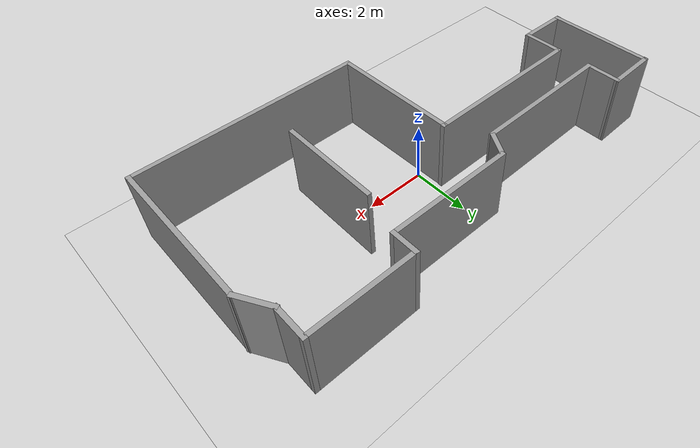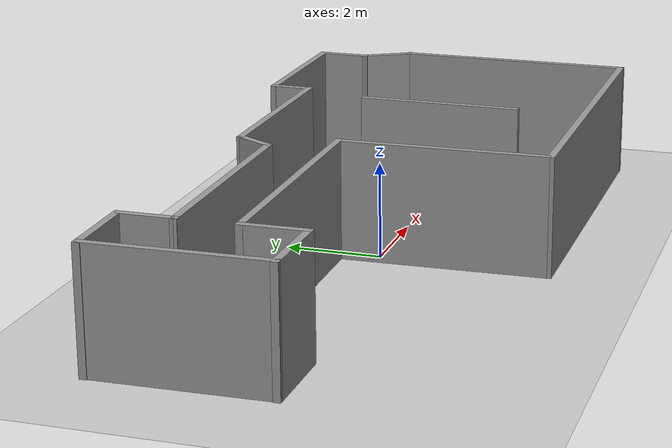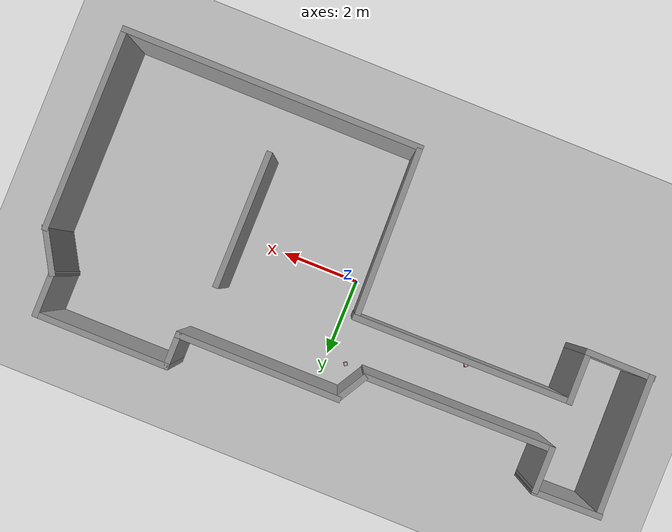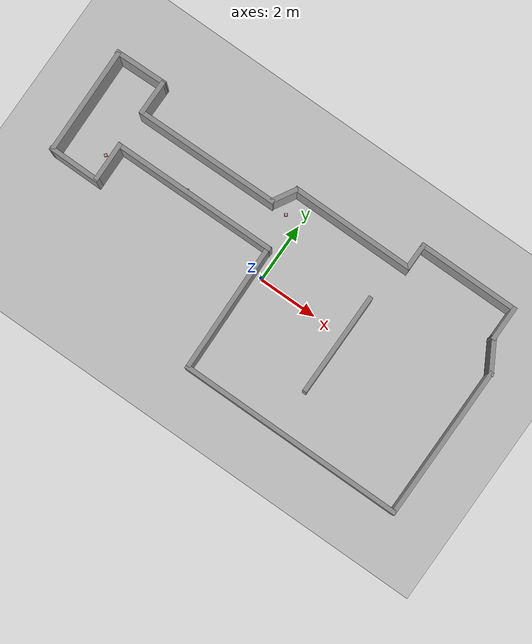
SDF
<sdf version="1.7">
 <world name="default">
  <model name="ground_plane">
   <static>1</static>
   <link name="link">
    <collision name="collision">
     <geometry><plane><normal>0 0 1</normal><size>100 100</size></plane></geometry>
     <surface><friction><ode><mu>100</mu><mu2>50</mu2></ode></friction></surface>
    </collision>
    <visual name="visual">
     <cast_shadows>0</cast_shadows>
     <geometry><plane><normal>0 0 1</normal><size>100 100</size></plane></geometry>
     <material>
      <script><uri>file://media/materials/scripts/gazebo.material</uri><name>Gazebo/Grey</name></script>
     </material>
    </visual>
   </link>
  </model>
  <model name="room_walls">
   <link name="Wall_1">
    <collision name="Wall_1_Collision">
     <geometry><box><size>1.2 0.15 2.5</size></box></geometry>
     <pose>0 0 1.25 0 -0 0</pose>
    </collision>
    <visual name="Wall_1_Visual">
     <pose>0 0 1.25 0 -0 0</pose>
     <geometry><box><size>1.2 0.15 2.5</size></box></geometry>
     <material>
      <script><uri>file://media/materials/scripts/gazebo.material</uri><name>Gazebo/Grey</name></script>
      <ambient>1 1 1 1</ambient>
     </material>
     <meta><layer>0</layer></meta>
    </visual>
    <pose>-5.79107 2.49368 0 0 -0 1.5708</pose>
   </link>
   <link name="Wall_2">
    <collision name="Wall_2_Collision">
     <geometry><box><size>1.79256 0.15 2.5</size></box></geometry>
     <pose>0 0 1.25 0 -0 0</pose>
    </collision>
    <visual name="Wall_2_Visual">
     <pose>0 0 1.25 0 -0 0</pose>
     <geometry><box><size>1.79256 0.15 2.5</size></box></geometry>
     <material>
      <script><uri>file://media/materials/scripts/gazebo.material</uri><name>Gazebo/Grey</name></script>
      <ambient>1 1 1 1</ambient>
     </material>
     <meta><layer>0</layer></meta>
    </visual>
    <pose>-6.61216 3.04631 0 0 -0 -3.1203</pose>
   </link>
   <link name="Wall_3">
    <collision name="Wall_3_Collision">
     <geometry><box><size>3.68565 0.15 2.5</size></box></geometry>
     <pose>0 0 1.25 0 -0 0</pose>
    </collision>
    <visual name="Wall_3_Visual">
     <pose>0 0 1.25 0 -0 0</pose>
     <geometry><box><size>3.68565 0.15 2.5</size></box></geometry>
     <material>
      <script><uri>file://media/materials/scripts/gazebo.material</uri><name>Gazebo/Grey</name></script>
      <ambient>1 1 1 1</ambient>
     </material>
     <meta><layer>0</layer></meta>
    </visual>
    <pose>-7.38434 1.26123 0 0 -0 -1.5545</pose>
   </link>
   <link name="Wall_4">
    <collision name="Wall_4_Collision">
     <geometry><box><size>1.77744 0.15 2.5</size></box></geometry>
     <pose>0 0 1.25 0 -0 0</pose>
    </collision>
    <visual name="Wall_4_Visual">
     <pose>0 0 1.25 0 -0 0</pose>
     <geometry><box><size>1.77744 0.15 2.5</size></box></geometry>
     <material>
      <script><uri>file://media/materials/scripts/gazebo.material</uri><name>Gazebo/Grey</name></script>
      <ambient>1 1 1 1</ambient>
     </material>
     <meta><layer>0</layer></meta>
    </visual>
    <pose>-6.56193 -0.508986 0 0 -0 -0.003224</pose>
   </link>
   <link name="Wall_5">
    <collision name="Wall_5_Collision">
     <geometry><box><size>1.35672 0.15 2.5</size></box></geometry>
     <pose>0 0 1.25 0 -0 0</pose>
    </collision>
    <visual name="Wall_5_Visual">
     <pose>0 0 1.25 0 -0 0</pose>
     <geometry><box><size>1.35672 0.15 2.5</size></box></geometry>
     <material>
      <script><uri>file://media/materials/scripts/gazebo.material</uri><name>Gazebo/Grey</name></script>
      <ambient>1 1 1 1</ambient>
     </material>
     <meta><layer>0</layer></meta>
    </visual>
    <pose>-5.75827 0.136795 0 0 -0 1.5846</pose>
   </link>
   <link name="Wall_6">
    <collision name="Wall_6_Collision">
     <geometry><box><size>5.64664 0.15 2.5</size></box></geometry>
     <pose>0 0 1.25 0 -0 0</pose>
    </collision>
    <visual name="Wall_6_Visual">
     <pose>0 0 1.25 0 -0 0</pose>
     <geometry><box><size>5.64664 0.15 2.5</size></box></geometry>
     <material>
      <script><uri>file://media/materials/scripts/gazebo.material</uri><name>Gazebo/Grey</name></script>
      <ambient>1 1 1 1</ambient>
     </material>
     <meta><layer>0</layer></meta>
    </visual>
    <pose>-3.02009 0.766397 0 0 -0 0.007796</pose>
   </link>
   <link name="Wall_7">
    <collision name="Wall_7_Collision">
     <geometry><box><size>4.38998 0.15 2.5</size></box></geometry>
     <pose>0 0 1.25 0 -0 0</pose>
    </collision>
    <visual name="Wall_7_Visual">
     <pose>0 0 1.25 0 -0 0</pose>
     <geometry><box><size>4.38998 0.15 2.5</size></box></geometry>
     <material>
      <script><uri>file://media/materials/scripts/gazebo.material</uri><name>Gazebo/Grey</name></script>
      <ambient>1 1 1 1</ambient>
     </material>
     <meta><layer>0</layer></meta>
    </visual>
    <pose>-0.242291 -1.34162 0 0 -0 -1.54891</pose>
   </link>
   <link name="Wall_8">
    <collision name="Wall_8_Collision">
     <geometry><box><size>7.75 0.15 2.5</size></box></geometry>
     <pose>0 0 1.25 0 -0 0</pose>
    </collision>
    <visual name="Wall_8_Visual">
     <pose>0 0 1.25 0 -0 0</pose>
     <geometry><box><size>7.75 0.15 2.5</size></box></geometry>
     <material>
      <script><uri>file://media/materials/scripts/gazebo.material</uri><name>Gazebo/Grey</name></script>
      <ambient>1 1 1 1</ambient>
     </material>
     <meta><layer>0</layer></meta>
    </visual>
    <pose>3.60739 -3.55107 0 0 -0 0</pose>
   </link>
   <link name="Wall_9">
    <collision name="Wall_9_Collision">
     <geometry><box><size>5.25 0.15 2.5</size></box></geometry>
     <pose>0 0 1.25 0 -0 0</pose>
    </collision>
    <visual name="Wall_9_Visual">
     <pose>0 0 1.25 0 -0 0</pose>
     <geometry><box><size>5.25 0.15 2.5</size></box></geometry>
     <material>
      <script><uri>file://media/materials/scripts/gazebo.material</uri><name>Gazebo/Grey</name></script>
      <ambient>1 1 1 1</ambient>
     </material>
     <meta><layer>0</layer></meta>
    </visual>
    <pose>7.40739 -1.00107 0 0 -0 1.5708</pose>
   </link>
   <link name="Wall_10">
    <collision name="Wall_10_Collision">
     <geometry><box><size>1.25 0.15 2.5</size></box></geometry>
     <pose>0 0 1.25 0 -0 0</pose>
    </collision>
    <visual name="Wall_10_Visual">
     <pose>0 0 1.25 0 -0 0</pose>
     <geometry><box><size>1.25 0.15 2.5</size></box></geometry>
     <material>
      <script><uri>file://media/materials/scripts/gazebo.material</uri><name>Gazebo/Grey</name></script>
      <ambient>1 1 1 1</ambient>
     </material>
     <meta><layer>0</layer></meta>
    </visual>
    <pose>7.13239 2.02524 0 0 -0 2.0944</pose>
   </link>
   <link name="Wall_11">
    <collision name="Wall_11_Collision">
     <geometry><box><size>1.20114 0.15 2.5</size></box></geometry>
     <pose>0 0 1.25 0 -0 0</pose>
    </collision>
    <visual name="Wall_11_Visual">
     <pose>0 0 1.25 0 -0 0</pose>
     <geometry><box><size>1.20114 0.15 2.5</size></box></geometry>
     <material>
      <script><uri>file://media/materials/scripts/gazebo.material</uri><name>Gazebo/Grey</name></script>
      <ambient>1 1 1 1</ambient>
     </material>
     <meta><layer>0</layer></meta>
    </visual>
    <pose>6.85739 3.02713 0 0 -0 1.5708</pose>
   </link>
   <link name="Wall_12">
    <collision name="Wall_12_Collision">
     <geometry><box><size>3.5 0.15 2.5</size></box></geometry>
     <pose>0 0 1.25 0 -0 0</pose>
    </collision>
    <visual name="Wall_12_Visual">
     <pose>0 0 1.25 0 -0 0</pose>
     <geometry><box><size>3.5 0.15 2.5</size></box></geometry>
     <material>
      <script><uri>file://media/materials/scripts/gazebo.material</uri><name>Gazebo/Grey</name></script>
      <ambient>1 1 1 1</ambient>
     </material>
     <meta><layer>0</layer></meta>
    </visual>
    <pose>5.18239 3.55269 0 0 -0 3.14159</pose>
   </link>
   <link name="Wall_13">
    <collision name="Wall_13_Collision">
     <geometry><box><size>0.951136 0.15 2.5</size></box></geometry>
     <pose>0 0 1.25 0 -0 0</pose>
    </collision>
    <visual name="Wall_13_Visual">
     <pose>0 0 1.25 0 -0 0</pose>
     <geometry><box><size>0.951136 0.15 2.5</size></box></geometry>
     <material>
      <script><uri>file://media/materials/scripts/gazebo.material</uri><name>Gazebo/Grey</name></script>
      <ambient>1 1 1 1</ambient>
     </material>
     <meta><layer>0</layer></meta>
    </visual>
    <pose>3.50739 3.15213 0 0 -0 -1.5708</pose>
   </link>
   <link name="Wall_14">
    <collision name="Wall_14_Collision">
     <geometry><box><size>4.25 0.15 2.5</size></box></geometry>
     <pose>0 0 1.25 0 -0 0</pose>
    </collision>
    <visual name="Wall_14_Visual">
     <pose>0 0 1.25 0 -0 0</pose>
     <geometry><box><size>4.25 0.15 2.5</size></box></geometry>
     <material>
      <script><uri>file://media/materials/scripts/gazebo.material</uri><name>Gazebo/Grey</name></script>
      <ambient>1 1 1 1</ambient>
     </material>
     <meta><layer>0</layer></meta>
    </visual>
    <pose>1.45739 2.75156 0 0 -0 3.14159</pose>
   </link>
   <link name="Wall_15">
    <collision name="Wall_15_Collision">
     <geometry><box><size>0.9 0.15 2.5</size></box></geometry>
     <pose>0 0 1.25 0 -0 0</pose>
    </collision>
    <visual name="Wall_15_Visual">
     <pose>0 0 1.25 0 -0 0</pose>
     <geometry><box><size>0.9 0.15 2.5</size></box></geometry>
     <material>
      <script><uri>file://media/materials/scripts/gazebo.material</uri><name>Gazebo/Grey</name></script>
      <ambient>1 1 1 1</ambient>
     </material>
     <meta><layer>0</layer></meta>
    </visual>
    <pose>-0.805112 2.3835 0 0 -0 -2.0944</pose>
   </link>
   <link name="Wall_16">
    <collision name="Wall_16_Collision">
     <geometry><box><size>4.92373 0.15 2.5</size></box></geometry>
     <pose>0 0 1.25 0 -0 0</pose>
    </collision>
    <visual name="Wall_16_Visual">
     <pose>0 0 1.25 0 -0 0</pose>
     <geometry><box><size>4.92373 0.15 2.5</size></box></geometry>
     <material>
      <script><uri>file://media/materials/scripts/gazebo.material</uri><name>Gazebo/Grey</name></script>
      <ambient>1 1 1 1</ambient>
     </material>
     <meta><layer>0</layer></meta>
    </visual>
    <pose>-3.40434 1.98962 0 0 -0 -3.13077</pose>
   </link>
   <link name="Wall_17">
    <collision name="Wall_17_Collision">
     <geometry><box><size>3.5 0.15 2.5</size></box></geometry>
     <pose>0 0 1.25 0 -0 0</pose>
    </collision>
    <visual name="Wall_17_Visual">
     <pose>0 0 1.25 0 -0 0</pose>
     <geometry><box><size>3.5 0.15 2.5</size></box></geometry>
     <material>
      <script><uri>file://media/materials/scripts/gazebo.material</uri><name>Gazebo/Grey</name></script>
      <ambient>1 1 1 1</ambient>
     </material>
     <meta><layer>0</layer></meta>
    </visual>
    <pose>3.10875 -0.378342 0 0 -0 -1.5708</pose>
   </link>
   <static>1</static>
  </model>
  <model name="poly_10">
   <pose>-0.540636 2.08424 0.024997 4e-06 0.000102 2.17764</pose>
   <link name="poly_10_link">
    <inertial>
     <mass>0.7</mass>
     <inertia>
      <ixx>0.00016667</ixx>
      <ixy>0</ixy>
      <ixz>0</ixz>
      <iyy>0.00016667</iyy>
      <iyz>0</iyz>
      <izz>0.00016667</izz>
     </inertia>
    </inertial>
    <collision name="collision"><geometry><box><size>0.1 0.1 0.1</size></box></geometry></collision>
    <visual name="visual">
     <geometry><box><size>0.1 0.1 0.1</size></box></geometry>
     <material>
      <script><name>Gazebo/Red</name><uri>file://media/materials/scripts/gazebo.material</uri></script>
     </material>
    </visual>
   </link>
   <link name="tag10">
    <pose>0 0 0.051 0 -0 0</pose>
    <collision name="collision"><geometry><box><size>0.0825 0.0825 0.0001</size></box></geometry></collision>
    <visual name="visual">
     <cast_shadows>0</cast_shadows>
     <geometry><box><size>0.0825 0.0825 0.0001</size></box></geometry>
     <material>
      <script>
       <uri>model://artag/materials/scripts</uri>
       <uri>model://artag/materials/textures</uri>
       <name>material/artag10</name>
      </script>
     </material>
    </visual>
    <inertial>
     <inertia><ixx>0.0001</ixx><ixy>0</ixy><ixz>0</ixz><iyy>0.0001</iyy><iyz>0</iyz><izz>0.0001</izz></inertia>
     <mass>0.1</mass>
    </inertial>
   </link>
   <joint name="poly_10_tag10" type="fixed"><parent>poly_10_link</parent><child>tag10</child></joint>
  </model>
  <model name="poly_11">
   <pose>-3.46381 0.942433 0.025 0 -0 0.525908</pose>
   <link name="poly_11_link">
    <inertial>
     <mass>0.7</mass>
     <inertia>
      <ixx>0.00016667</ixx>
      <ixy>0</ixy>
      <ixz>0</ixz>
      <iyy>0.00016667</iyy>
      <iyz>0</iyz>
      <izz>0.00016667</izz>
     </inertia>
    </inertial>
    <collision name="collision"><geometry><box><size>0.1 0.1 0.1</size></box></geometry></collision>
    <visual name="visual">
     <geometry><box><size>0.1 0.1 0.1</size></box></geometry>
     <material>
      <script><name>Gazebo/Red</name><uri>file://media/materials/scripts/gazebo.material</uri></script>
     </material>
    </visual>
   </link>
   <link name="tag11">
    <pose>0 0 0.051 0 -0 0</pose>
    <collision name="collision"><geometry><box><size>0.0825 0.0825 0.0001</size></box></geometry></collision>
    <visual name="visual">
     <cast_shadows>0</cast_shadows>
     <geometry><box><size>0.0825 0.0825 0.0001</size></box></geometry>
     <material>
      <script>
       <uri>model://artag/materials/scripts</uri>
       <uri>model://artag/materials/textures</uri>
       <name>material/artag11</name>
      </script>
     </material>
    </visual>
    <inertial>
     <inertia><ixx>0.0001</ixx><ixy>0</ixy><ixz>0</ixz><iyy>0.0001</iyy><iyz>0</iyz><izz>0.0001</izz></inertia>
     <mass>0.1</mass>
    </inertial>
   </link>
   <joint name="poly_11_tag11" type="fixed"><parent>poly_11_link</parent><child>tag11</child></joint>
  </model>
  <model name="poly_14">
   <pose>-6.16538 0.376147 0.049997 6.7e-05 -1e-06 -0.609503</pose>
   <link name="poly_14_link">
    <inertial>
     <mass>0.7</mass>
     <inertia>
      <ixx>0.00016667</ixx>
      <ixy>0</ixy>
      <ixz>0</ixz>
      <iyy>0.00016667</iyy>
      <iyz>0</iyz>
      <izz>0.00016667</izz>
     </inertia>
    </inertial>
    <collision name="collision"><geometry><box><size>0.1 0.1 0.1</size></box></geometry></collision>
    <visual name="visual">
     <geometry><box><size>0.1 0.1 0.1</size></box></geometry>
     <material>
      <script><name>Gazebo/Red</name><uri>file://media/materials/scripts/gazebo.material</uri></script>
     </material>
    </visual>
   </link>
   <link name="tag14">
    <pose>0 0 0.051 0 -0 0</pose>
    <collision name="collision"><geometry><box><size>0.0825 0.0825 0.0001</size></box></geometry></collision>
    <visual name="visual">
     <cast_shadows>0</cast_shadows>
     <geometry><box><size>0.0825 0.0825 0.0001</size></box></geometry>
     <material>
      <script>
       <uri>model://artag/materials/scripts</uri>
       <uri>model://artag/materials/textures</uri>
       <name>material/artag14</name>
      </script>
     </material>
    </visual>
    <inertial>
     <inertia><ixx>0.0001</ixx><ixy>0</ixy><ixz>0</ixz><iyy>0.0001</iyy><iyz>0</iyz><izz>0.0001</izz></inertia>
     <mass>0.1</mass>
    </inertial>
   </link>
   <joint name="poly_14_tag14" type="fixed"><parent>poly_14_link</parent><child>tag14</child></joint>
  </model>
 </world>
</sdf>
